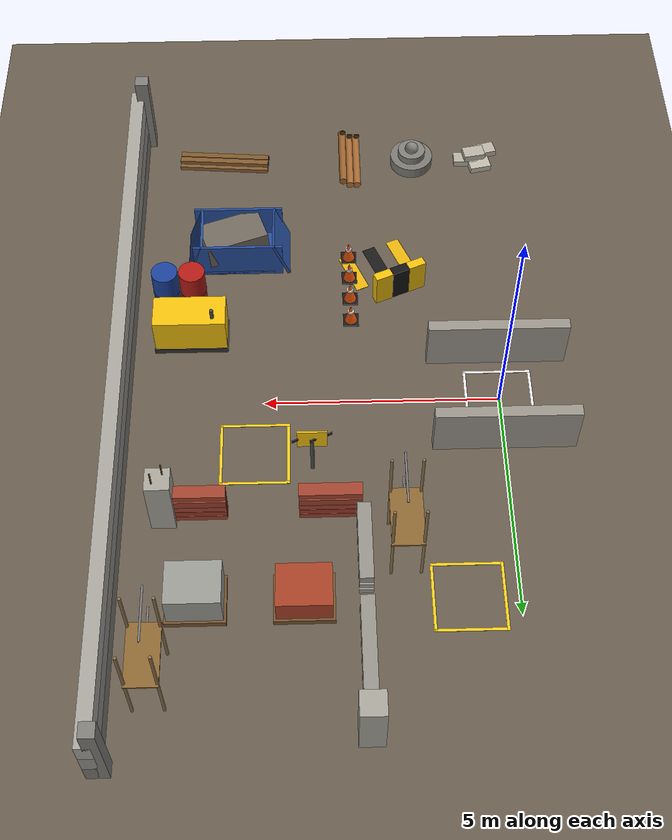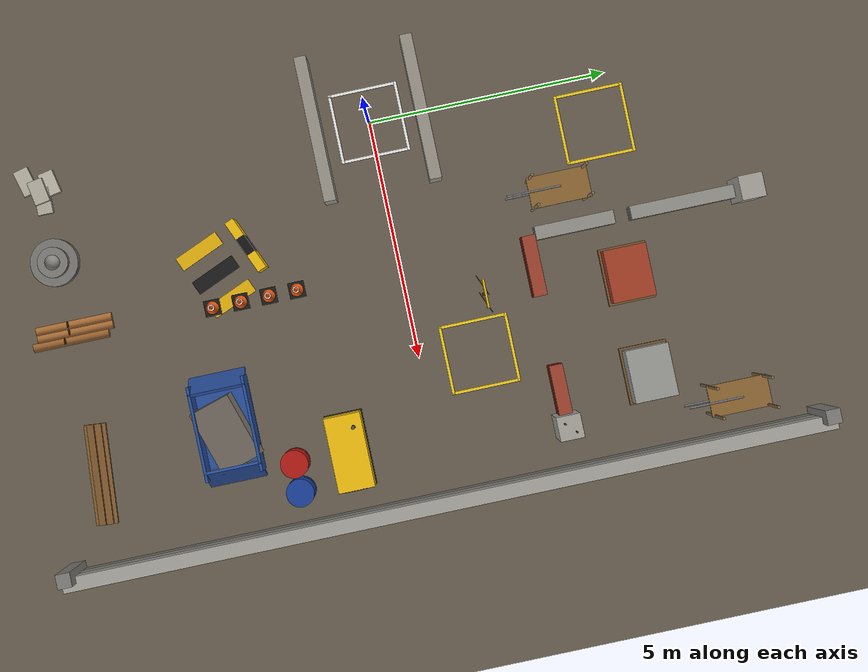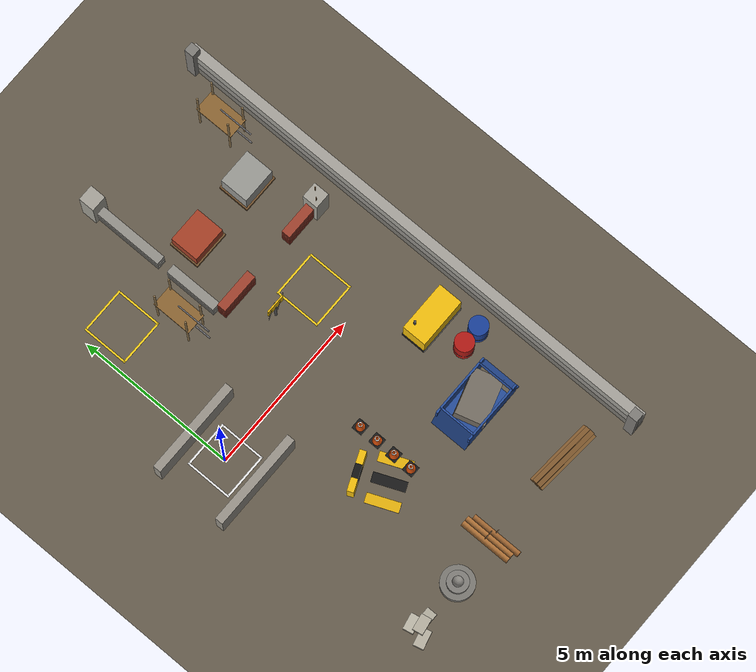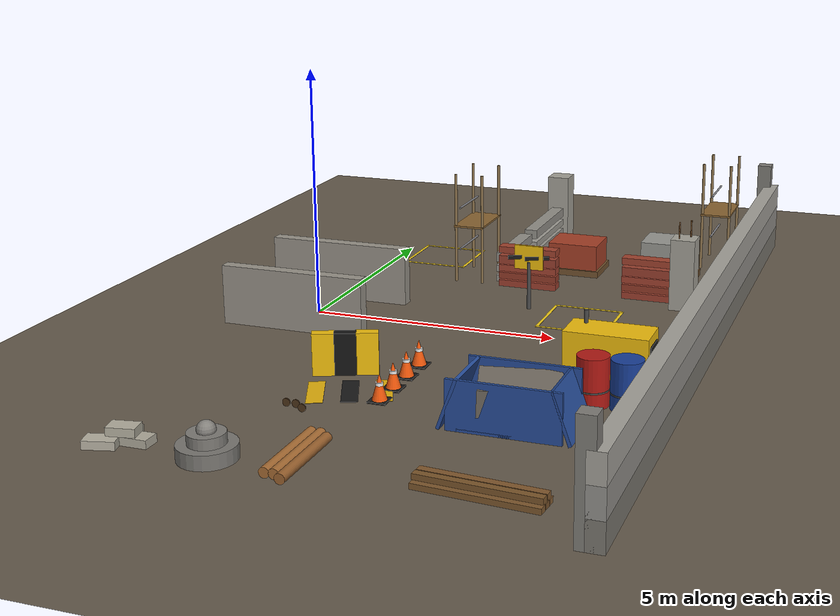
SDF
<sdf version="1.8">
 <world name="masonassist_world">
  <model name="ground_plane">
   <static>true</static>
   <link name="link">
    <collision name="collision">
     <geometry><plane><normal>0 0 1</normal><size>100 100</size></plane></geometry>
     <surface><friction><ode><mu>1.0</mu><mu2>1.0</mu2></ode></friction></surface>
    </collision>
    <visual name="visual">
     <geometry><plane><normal>0 0 1</normal><size>100 100</size></plane></geometry>
     <material><ambient>0.4 0.36 0.3 1</ambient><diffuse>0.4 0.36 0.3 1</diffuse></material>
    </visual>
   </link>
  </model>
  <model name="wall_east">
   <static>true</static>
   <pose>8 0 0.75 0 0 1.5708</pose>
   <link name="link">
    <collision name="collision"><geometry><box><size>16 0.3 1.5</size></box></geometry></collision>
    <visual name="base">
     <pose>0 0 -0.5 0 0 0</pose>
     <geometry><box><size>16 0.3 0.5</size></box></geometry>
     <material><ambient>0.48 0.47 0.44 1</ambient><diffuse>0.48 0.47 0.44 1</diffuse></material>
    </visual>
    <visual name="mid">
     <geometry><box><size>16 0.3 0.5</size></box></geometry>
     <material><ambient>0.58 0.57 0.55 1</ambient><diffuse>0.58 0.57 0.55 1</diffuse></material>
    </visual>
    <visual name="top">
     <pose>0 0 0.5 0 0 0</pose>
     <geometry><box><size>16 0.3 0.5</size></box></geometry>
     <material><ambient>0.65 0.64 0.61 1</ambient><diffuse>0.65 0.64 0.61 1</diffuse></material>
    </visual>
   </link>
  </model>
  <model name="column_ne">
   <static>true</static>
   <pose>7.85 7.85 1.0 0 0 0</pose>
   <link name="link">
    <visual name="visual">
     <geometry><box><size>0.3 0.3 2.0</size></box></geometry>
     <material><ambient>0.5 0.49 0.47 1</ambient><diffuse>0.5 0.49 0.47 1</diffuse></material>
    </visual>
    <collision name="collision"><geometry><box><size>0.3 0.3 2.0</size></box></geometry></collision>
   </link>
  </model>
  <model name="column_se">
   <static>true</static>
   <pose>7.85 -7.85 1.0 0 0 0</pose>
   <link name="link">
    <visual name="visual">
     <geometry><box><size>0.3 0.3 2.0</size></box></geometry>
     <material><ambient>0.5 0.49 0.47 1</ambient><diffuse>0.5 0.49 0.47 1</diffuse></material>
    </visual>
    <collision name="collision"><geometry><box><size>0.3 0.3 2.0</size></box></geometry></collision>
   </link>
  </model>
  <model name="wall_a_left">
   <static>true</static>
   <pose>3.65 2.7 0.6 0 0 0</pose>
   <link name="link">
    <collision name="collision"><geometry><box><size>1.3 0.3 1.2</size></box></geometry></collision>
    <visual name="c1">
     <pose>0 0 -0.42 0 0 0</pose>
     <geometry><box><size>1.26 0.28 0.14</size></box></geometry>
     <material><ambient>0.62 0.25 0.18 1</ambient><diffuse>0.62 0.25 0.18 1</diffuse></material>
    </visual>
    <visual name="c2">
     <pose>0 0 -0.25 0 0 0</pose>
     <geometry><box><size>1.26 0.28 0.14</size></box></geometry>
     <material><ambient>0.58 0.23 0.16 1</ambient><diffuse>0.58 0.23 0.16 1</diffuse></material>
    </visual>
    <visual name="c3">
     <pose>0 0 -0.08 0 0 0</pose>
     <geometry><box><size>1.26 0.28 0.14</size></box></geometry>
     <material><ambient>0.64 0.26 0.19 1</ambient><diffuse>0.64 0.26 0.19 1</diffuse></material>
    </visual>
    <visual name="c4">
     <pose>0 0 0.1 0 0 0</pose>
     <geometry><box><size>1.26 0.28 0.18</size></box></geometry>
     <material><ambient>0.6 0.25 0.18 1</ambient><diffuse>0.6 0.25 0.18 1</diffuse></material>
    </visual>
    <visual name="c5">
     <pose>0 0 0.32 0 0 0</pose>
     <geometry><box><size>1.26 0.28 0.14</size></box></geometry>
     <material><ambient>0.63 0.26 0.18 1</ambient><diffuse>0.63 0.26 0.18 1</diffuse></material>
    </visual>
   </link>
  </model>
  <model name="wall_a_right">
   <static>true</static>
   <pose>6.35 2.7 0.6 0 0 0</pose>
   <link name="link">
    <collision name="collision"><geometry><box><size>1.3 0.3 1.2</size></box></geometry></collision>
    <visual name="c1">
     <pose>0 0 -0.42 0 0 0</pose>
     <geometry><box><size>1.26 0.28 0.14</size></box></geometry>
     <material><ambient>0.62 0.25 0.18 1</ambient><diffuse>0.62 0.25 0.18 1</diffuse></material>
    </visual>
    <visual name="c2">
     <pose>0 0 -0.25 0 0 0</pose>
     <geometry><box><size>1.26 0.28 0.14</size></box></geometry>
     <material><ambient>0.58 0.23 0.16 1</ambient><diffuse>0.58 0.23 0.16 1</diffuse></material>
    </visual>
    <visual name="c3">
     <pose>0 0 -0.08 0 0 0</pose>
     <geometry><box><size>1.26 0.28 0.14</size></box></geometry>
     <material><ambient>0.64 0.26 0.19 1</ambient><diffuse>0.64 0.26 0.19 1</diffuse></material>
    </visual>
    <visual name="c4">
     <pose>0 0 0.1 0 0 0</pose>
     <geometry><box><size>1.26 0.28 0.18</size></box></geometry>
     <material><ambient>0.6 0.25 0.18 1</ambient><diffuse>0.6 0.25 0.18 1</diffuse></material>
    </visual>
    <visual name="c5">
     <pose>0 0 0.32 0 0 0</pose>
     <geometry><box><size>1.26 0.28 0.14</size></box></geometry>
     <material><ambient>0.63 0.26 0.18 1</ambient><diffuse>0.63 0.26 0.18 1</diffuse></material>
    </visual>
   </link>
  </model>
  <model name="wall_b_lower">
   <static>true</static>
   <pose>3.0 3.7 0.6 0 0 1.5708</pose>
   <link name="link">
    <collision name="collision"><geometry><box><size>1.7 0.3 1.2</size></box></geometry></collision>
    <visual name="c1">
     <pose>0 0 -0.42 0 0 0</pose>
     <geometry><box><size>1.66 0.28 0.14</size></box></geometry>
     <material><ambient>0.6 0.59 0.56 1</ambient><diffuse>0.6 0.59 0.56 1</diffuse></material>
    </visual>
    <visual name="c2">
     <pose>0 0 -0.2 0 0 0</pose>
     <geometry><box><size>1.66 0.28 0.14</size></box></geometry>
     <material><ambient>0.63 0.62 0.59 1</ambient><diffuse>0.63 0.62 0.59 1</diffuse></material>
    </visual>
    <visual name="c3">
     <pose>0 0 0.05 0 0 0</pose>
     <geometry><box><size>1.66 0.28 0.2</size></box></geometry>
     <material><ambient>0.58 0.57 0.54 1</ambient><diffuse>0.58 0.57 0.54 1</diffuse></material>
    </visual>
   </link>
  </model>
  <model name="wall_b_upper">
   <static>true</static>
   <pose>3.0 6.0 0.6 0 0 1.5708</pose>
   <link name="link">
    <collision name="collision"><geometry><box><size>2.3 0.3 1.2</size></box></geometry></collision>
    <visual name="c1">
     <pose>0 0 -0.42 0 0 0</pose>
     <geometry><box><size>2.26 0.28 0.14</size></box></geometry>
     <material><ambient>0.6 0.59 0.56 1</ambient><diffuse>0.6 0.59 0.56 1</diffuse></material>
    </visual>
    <visual name="c2">
     <pose>0 0 -0.2 0 0 0</pose>
     <geometry><box><size>2.26 0.28 0.14</size></box></geometry>
     <material><ambient>0.63 0.62 0.59 1</ambient><diffuse>0.63 0.62 0.59 1</diffuse></material>
    </visual>
    <visual name="c3">
     <pose>0 0 0.05 0 0 0</pose>
     <geometry><box><size>2.26 0.28 0.2</size></box></geometry>
     <material><ambient>0.58 0.57 0.54 1</ambient><diffuse>0.58 0.57 0.54 1</diffuse></material>
    </visual>
   </link>
  </model>
  <model name="col_bld_1">
   <static>true</static>
   <pose>7.0 2.7 0.75 0 0 0</pose>
   <link name="link">
    <visual name="visual">
     <geometry><box><size>0.5 0.5 1.5</size></box></geometry>
     <material><ambient>0.65 0.64 0.6 1</ambient><diffuse>0.65 0.64 0.6 1</diffuse></material>
    </visual>
    <collision name="collision"><geometry><box><size>0.5 0.5 1.5</size></box></geometry></collision>
   </link>
  </model>
  <model name="col_bld_2">
   <static>true</static>
   <pose>3.0 7.3 0.75 0 0 0</pose>
   <link name="link">
    <visual name="visual">
     <geometry><box><size>0.5 0.5 1.5</size></box></geometry>
     <material><ambient>0.65 0.64 0.6 1</ambient><diffuse>0.65 0.64 0.6 1</diffuse></material>
    </visual>
    <collision name="collision"><geometry><box><size>0.5 0.5 1.5</size></box></geometry></collision>
   </link>
  </model>
  <model name="rebar_sticking_up">
   <static>true</static>
   <pose>7.0 2.7 1.6 0 0 0</pose>
   <link name="link">
    <visual name="r1">
     <pose>0.1 0.1 0 0 0 0</pose>
     <geometry><cylinder><radius>0.015</radius><length>0.5</length></cylinder></geometry>
     <material><ambient>0.45 0.3 0.15 1</ambient><diffuse>0.45 0.3 0.15 1</diffuse></material>
    </visual>
    <visual name="r2">
     <pose>-0.1 -0.1 0 0 0 0</pose>
     <geometry><cylinder><radius>0.015</radius><length>0.5</length></cylinder></geometry>
     <material><ambient>0.45 0.3 0.15 1</ambient><diffuse>0.45 0.3 0.15 1</diffuse></material>
    </visual>
   </link>
  </model>
  <model name="scaffold_1">
   <static>true</static>
   <pose>2.2 3.5 0 0 0 0</pose>
   <link name="link">
    <collision name="collision">
     <pose>0 0 1.2 0 0 0</pose>
     <geometry><box><size>0.7 1.3 2.4</size></box></geometry>
    </collision>
    <visual name="pole1">
     <pose>-0.3 -0.55 1.2 0 0 0</pose>
     <geometry><cylinder><radius>0.03</radius><length>2.4</length></cylinder></geometry>
     <material><ambient>0.55 0.45 0.3 1</ambient><diffuse>0.55 0.45 0.3 1</diffuse></material>
    </visual>
    <visual name="pole2">
     <pose>0.3 -0.55 1.2 0 0 0</pose>
     <geometry><cylinder><radius>0.03</radius><length>2.4</length></cylinder></geometry>
     <material><ambient>0.55 0.45 0.3 1</ambient><diffuse>0.55 0.45 0.3 1</diffuse></material>
    </visual>
    <visual name="pole3">
     <pose>-0.3 0.55 1.2 0 0 0</pose>
     <geometry><cylinder><radius>0.03</radius><length>2.4</length></cylinder></geometry>
     <material><ambient>0.55 0.45 0.3 1</ambient><diffuse>0.55 0.45 0.3 1</diffuse></material>
    </visual>
    <visual name="pole4">
     <pose>0.3 0.55 1.2 0 0 0</pose>
     <geometry><cylinder><radius>0.03</radius><length>2.4</length></cylinder></geometry>
     <material><ambient>0.55 0.45 0.3 1</ambient><diffuse>0.55 0.45 0.3 1</diffuse></material>
    </visual>
    <visual name="brace_low">
     <pose>0 -0.55 0.9 1.5708 0 0</pose>
     <geometry><cylinder><radius>0.02</radius><length>1.1</length></cylinder></geometry>
     <material><ambient>0.5 0.5 0.52 1</ambient><diffuse>0.5 0.5 0.52 1</diffuse></material>
    </visual>
    <visual name="brace_high">
     <pose>0 -0.55 1.8 1.5708 0 0</pose>
     <geometry><cylinder><radius>0.02</radius><length>1.1</length></cylinder></geometry>
     <material><ambient>0.5 0.5 0.52 1</ambient><diffuse>0.5 0.5 0.52 1</diffuse></material>
    </visual>
    <visual name="platform">
     <pose>0 0 1.25 0 0 0</pose>
     <geometry><box><size>0.65 1.25 0.04</size></box></geometry>
     <material><ambient>0.55 0.4 0.2 1</ambient><diffuse>0.55 0.4 0.2 1</diffuse></material>
    </visual>
   </link>
  </model>
  <model name="warning_sign">
   <static>true</static>
   <pose>4.0 1.6 0 0 0 -1.5708</pose>
   <link name="link">
    <collision name="post_collision">
     <pose>0 0 0.5 0 0 0</pose>
     <geometry><cylinder><radius>0.04</radius><length>1.0</length></cylinder></geometry>
    </collision>
    <collision name="board_collision">
     <pose>0 0 1.1 0 0 0</pose>
     <geometry><box><size>0.04 0.6 0.5</size></box></geometry>
    </collision>
    <visual name="post">
     <pose>0 0 0.5 0 0 0</pose>
     <geometry><cylinder><radius>0.04</radius><length>1.0</length></cylinder></geometry>
     <material><ambient>0.3 0.3 0.3 1</ambient><diffuse>0.3 0.3 0.3 1</diffuse></material>
    </visual>
    <visual name="board">
     <pose>0 0 1.1 0 0 0</pose>
     <geometry><box><size>0.04 0.6 0.5</size></box></geometry>
     <material><ambient>0.95 0.75 0.05 1</ambient><diffuse>0.95 0.75 0.05 1</diffuse></material>
    </visual>
    <visual name="board_stripe1">
     <pose>0.025 -0.18 1.1 0 0 0.4</pose>
     <geometry><box><size>0.01 0.5 0.08</size></box></geometry>
     <material><ambient>0.1 0.1 0.1 1</ambient><diffuse>0.1 0.1 0.1 1</diffuse></material>
    </visual>
    <visual name="board_stripe2">
     <pose>0.025 0.18 1.1 0 0 0.4</pose>
     <geometry><box><size>0.01 0.5 0.08</size></box></geometry>
     <material><ambient>0.1 0.1 0.1 1</ambient><diffuse>0.1 0.1 0.1 1</diffuse></material>
    </visual>
   </link>
  </model>
  <model name="cement_bags">
   <static>true</static>
   <pose>0 -7 0.2 0 0 0.15</pose>
   <link name="link">
    <collision name="collision"><geometry><box><size>1.3 1.1 0.4</size></box></geometry></collision>
    <visual name="v1">
     <pose>-0.3 -0.2 -0.08 0 0 0.1</pose>
     <geometry><box><size>0.55 0.32 0.15</size></box></geometry>
     <material><ambient>0.72 0.7 0.64 1</ambient><diffuse>0.72 0.7 0.64 1</diffuse></material>
    </visual>
    <visual name="v2">
     <pose>0.2 0.0 -0.08 0 0 -0.15</pose>
     <geometry><box><size>0.55 0.32 0.15</size></box></geometry>
     <material><ambient>0.7 0.68 0.62 1</ambient><diffuse>0.7 0.68 0.62 1</diffuse></material>
    </visual>
    <visual name="v3">
     <pose>-0.1 0.25 -0.08 0 0 0.05</pose>
     <geometry><box><size>0.5 0.32 0.15</size></box></geometry>
     <material><ambient>0.74 0.72 0.66 1</ambient><diffuse>0.74 0.72 0.66 1</diffuse></material>
    </visual>
    <visual name="v4">
     <pose>0.0 0.0 0.08 0 0 0.02</pose>
     <geometry><box><size>0.5 0.32 0.15</size></box></geometry>
     <material><ambient>0.71 0.69 0.63 1</ambient><diffuse>0.71 0.69 0.63 1</diffuse></material>
    </visual>
   </link>
  </model>
  <model name="pipe_pile">
   <static>true</static>
   <pose>3 -7 0.25 1.5708 0 0</pose>
   <link name="link">
    <collision name="collision"><geometry><box><size>0.6 1.8 0.6</size></box></geometry></collision>
    <visual name="p1">
     <pose>-0.16 0 -0.14 0 0 0</pose>
     <geometry><cylinder><radius>0.09</radius><length>1.6</length></cylinder></geometry>
     <material><ambient>0.65 0.42 0.2 1</ambient><diffuse>0.65 0.42 0.2 1</diffuse></material>
    </visual>
    <visual name="p1cap">
     <pose>-0.16 0.81 -0.14 0 0 0</pose>
     <geometry><cylinder><radius>0.065</radius><length>0.02</length></cylinder></geometry>
     <material><ambient>0.3 0.2 0.1 1</ambient><diffuse>0.3 0.2 0.1 1</diffuse></material>
    </visual>
    <visual name="p2">
     <pose>0.0 0 -0.14 0 0 0</pose>
     <geometry><cylinder><radius>0.09</radius><length>1.6</length></cylinder></geometry>
     <material><ambient>0.65 0.42 0.2 1</ambient><diffuse>0.65 0.42 0.2 1</diffuse></material>
    </visual>
    <visual name="p2cap">
     <pose>0.0 0.81 -0.14 0 0 0</pose>
     <geometry><cylinder><radius>0.065</radius><length>0.02</length></cylinder></geometry>
     <material><ambient>0.3 0.2 0.1 1</ambient><diffuse>0.3 0.2 0.1 1</diffuse></material>
    </visual>
    <visual name="p3">
     <pose>0.16 0 -0.02 0 0 0</pose>
     <geometry><cylinder><radius>0.09</radius><length>1.6</length></cylinder></geometry>
     <material><ambient>0.6 0.38 0.18 1</ambient><diffuse>0.6 0.38 0.18 1</diffuse></material>
    </visual>
    <visual name="p3cap">
     <pose>0.16 0.81 -0.02 0 0 0</pose>
     <geometry><cylinder><radius>0.065</radius><length>0.02</length></cylinder></geometry>
     <material><ambient>0.3 0.2 0.1 1</ambient><diffuse>0.3 0.2 0.1 1</diffuse></material>
    </visual>
   </link>
  </model>
  <model name="timber_stack">
   <static>true</static>
   <pose>6 -7 0.2 0 0 -0.08</pose>
   <link name="link">
    <collision name="collision"><geometry><box><size>2.2 0.5 0.4</size></box></geometry></collision>
    <visual name="t1">
     <pose>0 -0.14 -0.08 0 0 0</pose>
     <geometry><box><size>2.1 0.14 0.1</size></box></geometry>
     <material><ambient>0.5 0.35 0.18 1</ambient><diffuse>0.5 0.35 0.18 1</diffuse></material>
    </visual>
    <visual name="t2">
     <pose>0 0.02 -0.08 0 0 0</pose>
     <geometry><box><size>2.1 0.14 0.1</size></box></geometry>
     <material><ambient>0.47 0.32 0.16 1</ambient><diffuse>0.47 0.32 0.16 1</diffuse></material>
    </visual>
    <visual name="t3">
     <pose>0 0.18 -0.08 0 0 0</pose>
     <geometry><box><size>2.1 0.14 0.1</size></box></geometry>
     <material><ambient>0.52 0.36 0.19 1</ambient><diffuse>0.52 0.36 0.19 1</diffuse></material>
    </visual>
    <visual name="t4">
     <pose>0 -0.06 0.04 0 0 0</pose>
     <geometry><box><size>2.1 0.14 0.1</size></box></geometry>
     <material><ambient>0.49 0.34 0.17 1</ambient><diffuse>0.49 0.34 0.17 1</diffuse></material>
    </visual>
    <visual name="t5">
     <pose>0 0.1 0.04 0 0 0</pose>
     <geometry><box><size>2.1 0.14 0.1</size></box></geometry>
     <material><ambient>0.51 0.35 0.18 1</ambient><diffuse>0.51 0.35 0.18 1</diffuse></material>
    </visual>
   </link>
  </model>
  <model name="aggregate_pile">
   <static>true</static>
   <pose>1.5 -7 0 0 0 -0.15</pose>
   <link name="link">
    <collision name="collision"><geometry><box><size>1.1 1.1 0.6</size></box></geometry></collision>
    <visual name="base">
     <pose>0 0 0.13 0 0 0</pose>
     <geometry><cylinder><radius>0.5</radius><length>0.26</length></cylinder></geometry>
     <material><ambient>0.48 0.47 0.45 1</ambient><diffuse>0.48 0.47 0.45 1</diffuse></material>
    </visual>
    <visual name="mid">
     <pose>0 0 0.33 0 0 0</pose>
     <geometry><cylinder><radius>0.32</radius><length>0.24</length></cylinder></geometry>
     <material><ambient>0.5 0.49 0.47 1</ambient><diffuse>0.5 0.49 0.47 1</diffuse></material>
    </visual>
    <visual name="top">
     <pose>0 0 0.48 0 0 0</pose>
     <geometry><sphere><radius>0.16</radius></sphere></geometry>
     <material><ambient>0.52 0.51 0.49 1</ambient><diffuse>0.52 0.51 0.49 1</diffuse></material>
    </visual>
   </link>
  </model>
  <model name="partition_a">
   <static>true</static>
   <pose>0 1.1 0.6 0 0 0</pose>
   <link name="link">
    <collision name="collision"><geometry><box><size>3 0.25 1.2</size></box></geometry></collision>
    <visual name="visual">
     <geometry><box><size>3 0.25 1.2</size></box></geometry>
     <material><ambient>0.6 0.58 0.54 1</ambient><diffuse>0.6 0.58 0.54 1</diffuse></material>
    </visual>
   </link>
  </model>
  <model name="partition_b">
   <static>true</static>
   <pose>0 -1.1 0.6 0 0 0</pose>
   <link name="link">
    <collision name="collision"><geometry><box><size>3 0.25 1.2</size></box></geometry></collision>
    <visual name="visual">
     <geometry><box><size>3 0.25 1.2</size></box></geometry>
     <material><ambient>0.6 0.58 0.54 1</ambient><diffuse>0.6 0.58 0.54 1</diffuse></material>
    </visual>
   </link>
  </model>
  <model name="barrier_1">
   <static>true</static>
   <pose>2 -3 0.4 0 0 0.4</pose>
   <link name="link">
    <collision name="collision"><geometry><box><size>1.2 0.2 0.8</size></box></geometry></collision>
    <visual name="s1">
     <pose>-0.4 0 0 0 0 0</pose>
     <geometry><box><size>0.4 0.2 0.8</size></box></geometry>
     <material><ambient>0.95 0.75 0.05 1</ambient><diffuse>0.95 0.75 0.05 1</diffuse></material>
    </visual>
    <visual name="s2">
     <geometry><box><size>0.4 0.2 0.8</size></box></geometry>
     <material><ambient>0.08 0.08 0.08 1</ambient><diffuse>0.08 0.08 0.08 1</diffuse></material>
    </visual>
    <visual name="s3">
     <pose>0.4 0 0 0 0 0</pose>
     <geometry><box><size>0.4 0.2 0.8</size></box></geometry>
     <material><ambient>0.95 0.75 0.05 1</ambient><diffuse>0.95 0.75 0.05 1</diffuse></material>
    </visual>
   </link>
  </model>
  <model name="work_zone_marking">
   <static>true</static>
   <pose>2 -3 0.015 0 0 0.4</pose>
   <link name="link">
    <visual name="h1">
     <pose>-0.5 -0.9 0 0 0 0</pose>
     <geometry><box><size>0.3 1.0 0.01</size></box></geometry>
     <material><ambient>0.9 0.7 0.05 1</ambient><diffuse>0.9 0.7 0.05 1</diffuse></material>
    </visual>
    <visual name="h2">
     <pose>0.1 -0.9 0 0 0 0</pose>
     <geometry><box><size>0.3 1.0 0.01</size></box></geometry>
     <material><ambient>0.1 0.1 0.1 1</ambient><diffuse>0.1 0.1 0.1 1</diffuse></material>
    </visual>
    <visual name="h3">
     <pose>0.7 -0.9 0 0 0 0</pose>
     <geometry><box><size>0.3 1.0 0.01</size></box></geometry>
     <material><ambient>0.9 0.7 0.05 1</ambient><diffuse>0.9 0.7 0.05 1</diffuse></material>
    </visual>
   </link>
  </model>
  <model name="generator">
   <static>true</static>
   <pose>6.6 -1.8 0 0 0 0</pose>
   <link name="link">
    <collision name="collision">
     <pose>0 0 0.5 0 0 0</pose>
     <geometry><box><size>1.6 0.8 1.0</size></box></geometry>
    </collision>
    <visual name="base">
     <pose>0 0 0.06 0 0 0</pose>
     <geometry><box><size>1.6 0.8 0.12</size></box></geometry>
     <material><ambient>0.2 0.2 0.2 1</ambient><diffuse>0.2 0.2 0.2 1</diffuse></material>
    </visual>
    <visual name="housing">
     <pose>0 0 0.55 0 0 0</pose>
     <geometry><box><size>1.56 0.76 0.86</size></box></geometry>
     <material><ambient>0.95 0.75 0.05 1</ambient><diffuse>0.95 0.75 0.05 1</diffuse></material>
    </visual>
    <visual name="vent">
     <pose>0.79 0 0.6 0 0 0</pose>
     <geometry><box><size>0.02 0.5 0.4</size></box></geometry>
     <material><ambient>0.1 0.1 0.1 1</ambient><diffuse>0.1 0.1 0.1 1</diffuse></material>
    </visual>
    <visual name="exhaust">
     <pose>-0.5 0.2 1.1 0 0 0</pose>
     <geometry><cylinder><radius>0.04</radius><length>0.25</length></cylinder></geometry>
     <material><ambient>0.3 0.3 0.3 1</ambient><diffuse>0.3 0.3 0.3 1</diffuse></material>
    </visual>
   </link>
  </model>
  <model name="fuel_drums">
   <static>true</static>
   <pose>6.9 -2.95 0 0 0 0</pose>
   <link name="link">
    <collision name="collision">
     <pose>0 0 0.45 0 0 0</pose>
     <geometry><box><size>1.2 0.6 0.9</size></box></geometry>
    </collision>
    <visual name="drum_1">
     <pose>-0.3 0 0.45 0 0 0</pose>
     <geometry><cylinder><radius>0.29</radius><length>0.9</length></cylinder></geometry>
     <material><ambient>0.7 0.1 0.08 1</ambient><diffuse>0.7 0.1 0.08 1</diffuse></material>
    </visual>
    <visual name="drum_2">
     <pose>0.3 0 0.45 0 0 0</pose>
     <geometry><cylinder><radius>0.29</radius><length>0.9</length></cylinder></geometry>
     <material><ambient>0.1 0.25 0.6 1</ambient><diffuse>0.1 0.25 0.6 1</diffuse></material>
    </visual>
    <visual name="band_1">
     <pose>-0.3 0 0.3 0 0 0</pose>
     <geometry><cylinder><radius>0.295</radius><length>0.03</length></cylinder></geometry>
     <material><ambient>0.3 0.3 0.3 1</ambient><diffuse>0.3 0.3 0.3 1</diffuse></material>
    </visual>
    <visual name="band_2">
     <pose>0.3 0 0.3 0 0 0</pose>
     <geometry><cylinder><radius>0.295</radius><length>0.03</length></cylinder></geometry>
     <material><ambient>0.3 0.3 0.3 1</ambient><diffuse>0.3 0.3 0.3 1</diffuse></material>
    </visual>
   </link>
  </model>
  <model name="skip_bin">
   <static>true</static>
   <pose>5.6 -4.2 0 0 0 0</pose>
   <link name="link">
    <collision name="collision">
     <pose>0 0 0.45 0 0 0</pose>
     <geometry><box><size>2.0 1.2 0.9</size></box></geometry>
    </collision>
    <visual name="floor">
     <pose>0 0 0.05 0 0 0</pose>
     <geometry><box><size>1.6 1.2 0.1</size></box></geometry>
     <material><ambient>0.15 0.3 0.6 1</ambient><diffuse>0.15 0.3 0.6 1</diffuse></material>
    </visual>
    <visual name="side_n">
     <pose>0 0.57 0.45 0 0 0</pose>
     <geometry><box><size>2.0 0.06 0.9</size></box></geometry>
     <material><ambient>0.15 0.3 0.6 1</ambient><diffuse>0.15 0.3 0.6 1</diffuse></material>
    </visual>
    <visual name="side_s">
     <pose>0 -0.57 0.45 0 0 0</pose>
     <geometry><box><size>2.0 0.06 0.9</size></box></geometry>
     <material><ambient>0.15 0.3 0.6 1</ambient><diffuse>0.15 0.3 0.6 1</diffuse></material>
    </visual>
    <visual name="end_e">
     <pose>0.97 0 0.45 0 -0.35 0</pose>
     <geometry><box><size>0.06 1.2 0.95</size></box></geometry>
     <material><ambient>0.15 0.3 0.6 1</ambient><diffuse>0.15 0.3 0.6 1</diffuse></material>
    </visual>
    <visual name="end_w">
     <pose>-0.97 0 0.45 0 0.35 0</pose>
     <geometry><box><size>0.06 1.2 0.95</size></box></geometry>
     <material><ambient>0.15 0.3 0.6 1</ambient><diffuse>0.15 0.3 0.6 1</diffuse></material>
    </visual>
    <visual name="debris">
     <pose>0.1 0 0.55 0.1 0.05 0.3</pose>
     <geometry><box><size>1.4 0.9 0.5</size></box></geometry>
     <material><ambient>0.45 0.42 0.38 1</ambient><diffuse>0.45 0.42 0.38 1</diffuse></material>
    </visual>
   </link>
  </model>
  <model name="traffic_cone_1">
   <static>true</static>
   <pose>3.1 -2.2 0 0 0 0</pose>
   <link name="link">
    <collision name="collision">
     <pose>0 0 0.25 0 0 0</pose>
     <geometry><box><size>0.3 0.3 0.5</size></box></geometry>
    </collision>
    <visual name="base">
     <pose>0 0 0.015 0 0 0</pose>
     <geometry><box><size>0.34 0.34 0.03</size></box></geometry>
     <material><ambient>0.1 0.1 0.1 1</ambient><diffuse>0.1 0.1 0.1 1</diffuse></material>
    </visual>
    <visual name="cone">
     <pose>0 0 0.26 0 0 0</pose>
     <geometry><cone><radius>0.14</radius><length>0.48</length></cone></geometry>
     <material><ambient>0.95 0.35 0.05 1</ambient><diffuse>0.95 0.35 0.05 1</diffuse></material>
    </visual>
    <visual name="stripe">
     <pose>0 0 0.32 0 0 0</pose>
     <geometry><cylinder><radius>0.068</radius><length>0.06</length></cylinder></geometry>
     <material><ambient>0.95 0.95 0.95 1</ambient><diffuse>0.95 0.95 0.95 1</diffuse></material>
    </visual>
   </link>
  </model>
  <model name="traffic_cone_2">
   <static>true</static>
   <pose>3.1 -2.8 0 0 0 0</pose>
   <link name="link">
    <collision name="collision">
     <pose>0 0 0.25 0 0 0</pose>
     <geometry><box><size>0.3 0.3 0.5</size></box></geometry>
    </collision>
    <visual name="base">
     <pose>0 0 0.015 0 0 0</pose>
     <geometry><box><size>0.34 0.34 0.03</size></box></geometry>
     <material><ambient>0.1 0.1 0.1 1</ambient><diffuse>0.1 0.1 0.1 1</diffuse></material>
    </visual>
    <visual name="cone">
     <pose>0 0 0.26 0 0 0</pose>
     <geometry><cone><radius>0.14</radius><length>0.48</length></cone></geometry>
     <material><ambient>0.95 0.35 0.05 1</ambient><diffuse>0.95 0.35 0.05 1</diffuse></material>
    </visual>
    <visual name="stripe">
     <pose>0 0 0.32 0 0 0</pose>
     <geometry><cylinder><radius>0.068</radius><length>0.06</length></cylinder></geometry>
     <material><ambient>0.95 0.95 0.95 1</ambient><diffuse>0.95 0.95 0.95 1</diffuse></material>
    </visual>
   </link>
  </model>
  <model name="traffic_cone_3">
   <static>true</static>
   <pose>3.1 -3.4 0 0 0 0</pose>
   <link name="link">
    <collision name="collision">
     <pose>0 0 0.25 0 0 0</pose>
     <geometry><box><size>0.3 0.3 0.5</size></box></geometry>
    </collision>
    <visual name="base">
     <pose>0 0 0.015 0 0 0</pose>
     <geometry><box><size>0.34 0.34 0.03</size></box></geometry>
     <material><ambient>0.1 0.1 0.1 1</ambient><diffuse>0.1 0.1 0.1 1</diffuse></material>
    </visual>
    <visual name="cone">
     <pose>0 0 0.26 0 0 0</pose>
     <geometry><cone><radius>0.14</radius><length>0.48</length></cone></geometry>
     <material><ambient>0.95 0.35 0.05 1</ambient><diffuse>0.95 0.35 0.05 1</diffuse></material>
    </visual>
    <visual name="stripe">
     <pose>0 0 0.32 0 0 0</pose>
     <geometry><cylinder><radius>0.068</radius><length>0.06</length></cylinder></geometry>
     <material><ambient>0.95 0.95 0.95 1</ambient><diffuse>0.95 0.95 0.95 1</diffuse></material>
    </visual>
   </link>
  </model>
  <model name="traffic_cone_4">
   <static>true</static>
   <pose>3.1 -4.0 0 0 0 0</pose>
   <link name="link">
    <collision name="collision">
     <pose>0 0 0.25 0 0 0</pose>
     <geometry><box><size>0.3 0.3 0.5</size></box></geometry>
    </collision>
    <visual name="base">
     <pose>0 0 0.015 0 0 0</pose>
     <geometry><box><size>0.34 0.34 0.03</size></box></geometry>
     <material><ambient>0.1 0.1 0.1 1</ambient><diffuse>0.1 0.1 0.1 1</diffuse></material>
    </visual>
    <visual name="cone">
     <pose>0 0 0.26 0 0 0</pose>
     <geometry><cone><radius>0.14</radius><length>0.48</length></cone></geometry>
     <material><ambient>0.95 0.35 0.05 1</ambient><diffuse>0.95 0.35 0.05 1</diffuse></material>
    </visual>
    <visual name="stripe">
     <pose>0 0 0.32 0 0 0</pose>
     <geometry><cylinder><radius>0.068</radius><length>0.06</length></cylinder></geometry>
     <material><ambient>0.95 0.95 0.95 1</ambient><diffuse>0.95 0.95 0.95 1</diffuse></material>
    </visual>
   </link>
  </model>
  <model name="delivered_bricks">
   <static>true</static>
   <pose>4.2 4.6 0 0 0 0</pose>
   <link name="link">
    <collision name="collision">
     <pose>0 0 0.35 0 0 0</pose>
     <geometry><box><size>1.2 1.0 0.7</size></box></geometry>
    </collision>
    <visual name="pallet">
     <pose>0 0 0.07 0 0 0</pose>
     <geometry><box><size>1.2 1.0 0.14</size></box></geometry>
     <material><ambient>0.45 0.32 0.18 1</ambient><diffuse>0.45 0.32 0.18 1</diffuse></material>
    </visual>
    <visual name="bricks">
     <pose>0 0 0.42 0 0 0</pose>
     <geometry><box><size>1.1 0.9 0.56</size></box></geometry>
     <material><ambient>0.65 0.25 0.15 1</ambient><diffuse>0.65 0.25 0.15 1</diffuse></material>
    </visual>
   </link>
  </model>
  <model name="delivered_blocks">
   <static>true</static>
   <pose>6.3 4.6 0 0 0 0</pose>
   <link name="link">
    <collision name="collision">
     <pose>0 0 0.45 0 0 0</pose>
     <geometry><box><size>1.2 1.0 0.9</size></box></geometry>
    </collision>
    <visual name="pallet">
     <pose>0 0 0.07 0 0 0</pose>
     <geometry><box><size>1.2 1.0 0.14</size></box></geometry>
     <material><ambient>0.45 0.32 0.18 1</ambient><diffuse>0.45 0.32 0.18 1</diffuse></material>
    </visual>
    <visual name="blocks">
     <pose>0 0 0.52 0 0 0</pose>
     <geometry><box><size>1.1 0.9 0.76</size></box></geometry>
     <material><ambient>0.6 0.6 0.58 1</ambient><diffuse>0.6 0.6 0.58 1</diffuse></material>
    </visual>
   </link>
  </model>
  <model name="scaffold_2">
   <static>true</static>
   <pose>7.1 6.2 0 0 0 0</pose>
   <link name="link">
    <collision name="collision">
     <pose>0 0 1.2 0 0 0</pose>
     <geometry><box><size>0.7 1.3 2.4</size></box></geometry>
    </collision>
    <visual name="pole1">
     <pose>-0.3 -0.55 1.2 0 0 0</pose>
     <geometry><cylinder><radius>0.03</radius><length>2.4</length></cylinder></geometry>
     <material><ambient>0.55 0.45 0.3 1</ambient><diffuse>0.55 0.45 0.3 1</diffuse></material>
    </visual>
    <visual name="pole2">
     <pose>0.3 -0.55 1.2 0 0 0</pose>
     <geometry><cylinder><radius>0.03</radius><length>2.4</length></cylinder></geometry>
     <material><ambient>0.55 0.45 0.3 1</ambient><diffuse>0.55 0.45 0.3 1</diffuse></material>
    </visual>
    <visual name="pole3">
     <pose>-0.3 0.55 1.2 0 0 0</pose>
     <geometry><cylinder><radius>0.03</radius><length>2.4</length></cylinder></geometry>
     <material><ambient>0.55 0.45 0.3 1</ambient><diffuse>0.55 0.45 0.3 1</diffuse></material>
    </visual>
    <visual name="pole4">
     <pose>0.3 0.55 1.2 0 0 0</pose>
     <geometry><cylinder><radius>0.03</radius><length>2.4</length></cylinder></geometry>
     <material><ambient>0.55 0.45 0.3 1</ambient><diffuse>0.55 0.45 0.3 1</diffuse></material>
    </visual>
    <visual name="brace_low">
     <pose>0 -0.55 0.9 1.5708 0 0</pose>
     <geometry><cylinder><radius>0.02</radius><length>1.1</length></cylinder></geometry>
     <material><ambient>0.5 0.5 0.52 1</ambient><diffuse>0.5 0.5 0.52 1</diffuse></material>
    </visual>
    <visual name="brace_high">
     <pose>0 -0.55 1.8 1.5708 0 0</pose>
     <geometry><cylinder><radius>0.02</radius><length>1.1</length></cylinder></geometry>
     <material><ambient>0.5 0.5 0.52 1</ambient><diffuse>0.5 0.5 0.52 1</diffuse></material>
    </visual>
    <visual name="platform">
     <pose>0 0 1.25 0 0 0</pose>
     <geometry><box><size>0.65 1.25 0.04</size></box></geometry>
     <material><ambient>0.55 0.4 0.2 1</ambient><diffuse>0.55 0.4 0.2 1</diffuse></material>
    </visual>
   </link>
  </model>
  <model name="bay_building_door">
   <static>true</static>
   <pose>5.2 1.25 0.013 0 0 0</pose>
   <link name="link">
    <visual name="n">
     <pose>0 0.7 0 0 0 0</pose>
     <geometry><box><size>1.46 0.06 0.004</size></box></geometry>
     <material><ambient>0.95 0.8 0.1 1</ambient><diffuse>0.95 0.8 0.1 1</diffuse></material>
    </visual>
    <visual name="s">
     <pose>0 -0.7 0 0 0 0</pose>
     <geometry><box><size>1.46 0.06 0.004</size></box></geometry>
     <material><ambient>0.95 0.8 0.1 1</ambient><diffuse>0.95 0.8 0.1 1</diffuse></material>
    </visual>
    <visual name="e">
     <pose>0.7 0 0 0 0 0</pose>
     <geometry><box><size>0.06 1.46 0.004</size></box></geometry>
     <material><ambient>0.95 0.8 0.1 1</ambient><diffuse>0.95 0.8 0.1 1</diffuse></material>
    </visual>
    <visual name="w">
     <pose>-0.7 0 0 0 0 0</pose>
     <geometry><box><size>0.06 1.46 0.004</size></box></geometry>
     <material><ambient>0.95 0.8 0.1 1</ambient><diffuse>0.95 0.8 0.1 1</diffuse></material>
    </visual>
   </link>
  </model>
  <model name="bay_scaffold">
   <static>true</static>
   <pose>1.0 4.6 0.013 0 0 0</pose>
   <link name="link">
    <visual name="n">
     <pose>0 0.7 0 0 0 0</pose>
     <geometry><box><size>1.46 0.06 0.004</size></box></geometry>
     <material><ambient>0.95 0.8 0.1 1</ambient><diffuse>0.95 0.8 0.1 1</diffuse></material>
    </visual>
    <visual name="s">
     <pose>0 -0.7 0 0 0 0</pose>
     <geometry><box><size>1.46 0.06 0.004</size></box></geometry>
     <material><ambient>0.95 0.8 0.1 1</ambient><diffuse>0.95 0.8 0.1 1</diffuse></material>
    </visual>
    <visual name="e">
     <pose>0.7 0 0 0 0 0</pose>
     <geometry><box><size>0.06 1.46 0.004</size></box></geometry>
     <material><ambient>0.95 0.8 0.1 1</ambient><diffuse>0.95 0.8 0.1 1</diffuse></material>
    </visual>
    <visual name="w">
     <pose>-0.7 0 0 0 0 0</pose>
     <geometry><box><size>0.06 1.46 0.004</size></box></geometry>
     <material><ambient>0.95 0.8 0.1 1</ambient><diffuse>0.95 0.8 0.1 1</diffuse></material>
    </visual>
   </link>
  </model>
  <model name="bay_dock">
   <static>true</static>
   <pose>0 0 0.026 0 0 0</pose>
   <link name="link">
    <visual name="n">
     <pose>0 0.7 0 0 0 0</pose>
     <geometry><box><size>1.46 0.06 0.004</size></box></geometry>
     <material><ambient>0.92 0.92 0.92 1</ambient><diffuse>0.92 0.92 0.92 1</diffuse></material>
    </visual>
    <visual name="s">
     <pose>0 -0.7 0 0 0 0</pose>
     <geometry><box><size>1.46 0.06 0.004</size></box></geometry>
     <material><ambient>0.92 0.92 0.92 1</ambient><diffuse>0.92 0.92 0.92 1</diffuse></material>
    </visual>
    <visual name="e">
     <pose>0.7 0 0 0 0 0</pose>
     <geometry><box><size>0.06 1.46 0.004</size></box></geometry>
     <material><ambient>0.92 0.92 0.92 1</ambient><diffuse>0.92 0.92 0.92 1</diffuse></material>
    </visual>
    <visual name="w">
     <pose>-0.7 0 0 0 0 0</pose>
     <geometry><box><size>0.06 1.46 0.004</size></box></geometry>
     <material><ambient>0.92 0.92 0.92 1</ambient><diffuse>0.92 0.92 0.92 1</diffuse></material>
    </visual>
   </link>
  </model>
 </world>
</sdf>
